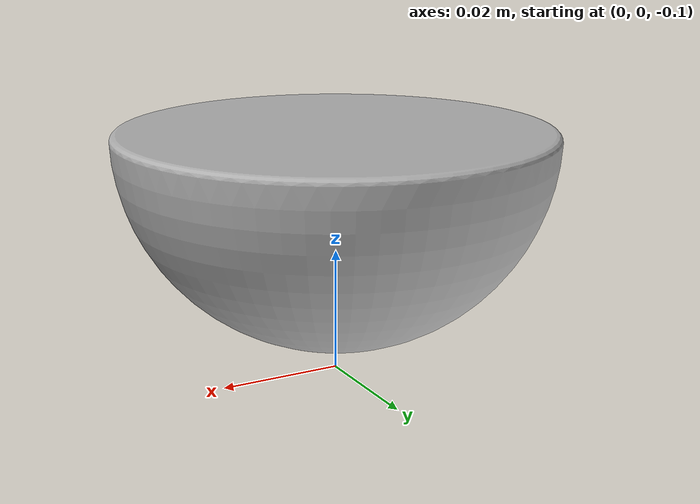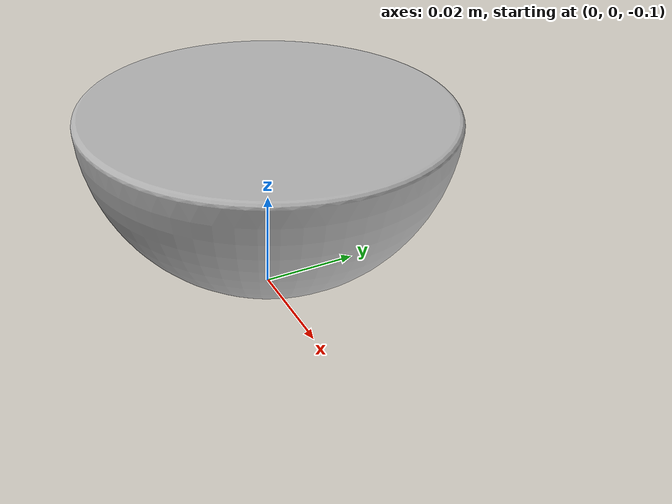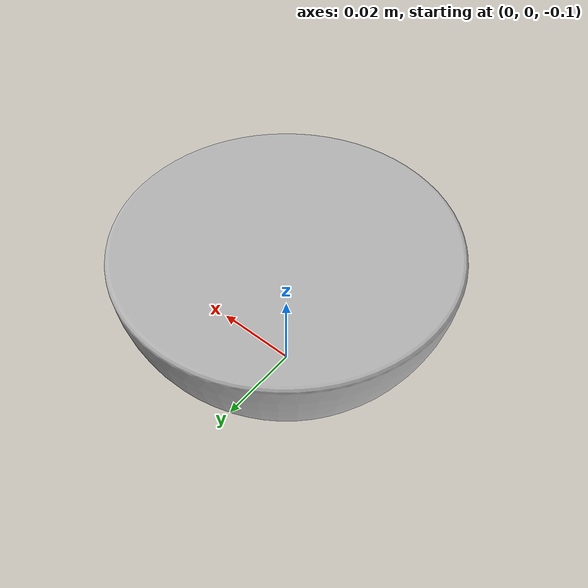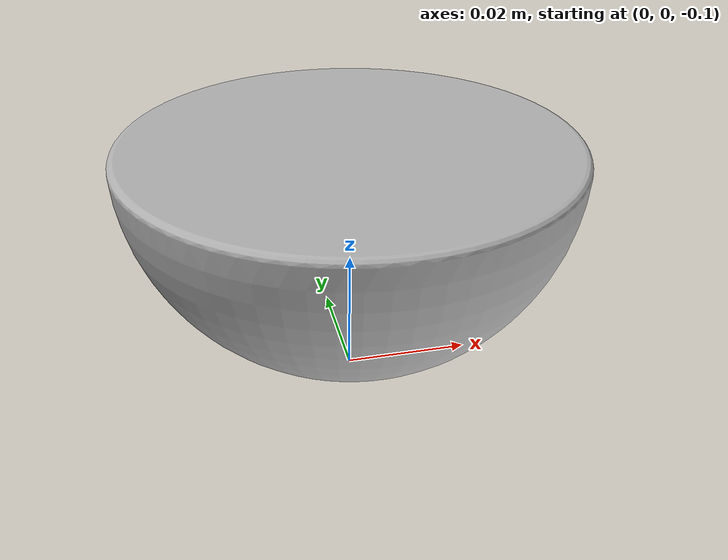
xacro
<?xml version="1.0" ?>
<robot name="Globo_GG" xmlns:xacro="http://www.ros.org/wiki/xacro">

<xacro:include filename="$(find Globo_GG_description)/urdf/materials.xacro" />
<xacro:include filename="$(find Globo_GG_description)/urdf/Globo_GG.trans" />
<xacro:include filename="$(find Globo_GG_description)/urdf/Globo_GG.gazebo" />
<link name="base_link">
  <inertial>
    <origin xyz="-6.235189367571009e-18 -6.235189367571009e-18 -0.07315904030021088" rpy="0 0 0"/>
    <mass value="0.7156492156888147"/>
    <inertia ixx="0.00023" iyy="0.00023" izz="0.000355" ixy="-0.0" iyz="-0.0" ixz="-0.0"/>
  </inertial>
  <visual>
    <origin xyz="0 0 0" rpy="0 0 0"/>
    <geometry>
      <mesh filename="package://Globo_GG_description/meshes/base_link.stl" scale="0.001 0.001 0.001"/>
    </geometry>
    <material name="silver"/>
  </visual>
  <collision>
    <origin xyz="0 0 0" rpy="0 0 0"/>
    <geometry>
      <mesh filename="package://Globo_GG_description/meshes/base_link.stl" scale="0.001 0.001 0.001"/>
    </geometry>
  </collision>
</link>

</robot>

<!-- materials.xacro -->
<robot name="Globo_GG" xmlns:xacro="http://www.ros.org/wiki/xacro" >

<material name="silver">
  <color rgba="0.700 0.700 0.700 1.000"/>
</material>

</robot>

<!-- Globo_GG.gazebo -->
<robot name="Globo_GG" xmlns:xacro="http://www.ros.org/wiki/xacro" >

<xacro:property name="body_color" value="Gazebo/Silver" />

<gazebo>
  <plugin name="control" filename="libgazebo_ros_control.so"/>
</gazebo>
<gazebo reference="base_link">
  <material>${body_color}</material>
  <mu1>0.2</mu1>
  <mu2>0.2</mu2>
  <selfCollide>true</selfCollide>
  <gravity>true</gravity>
</gazebo>

</robot>
